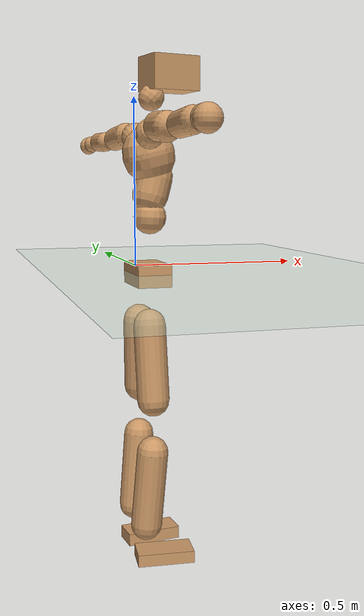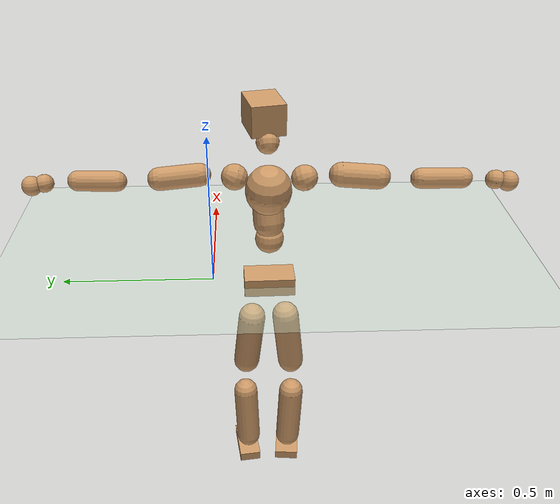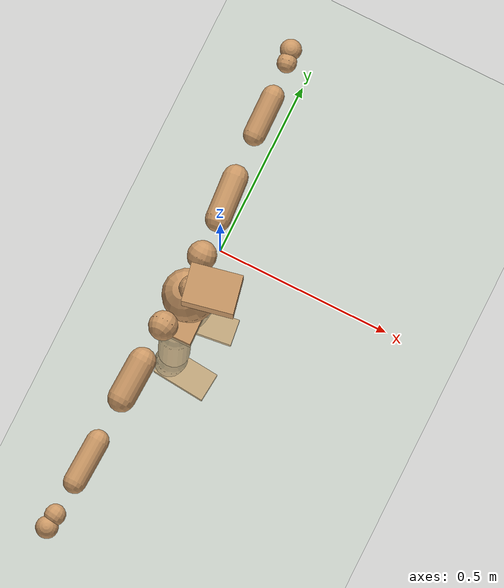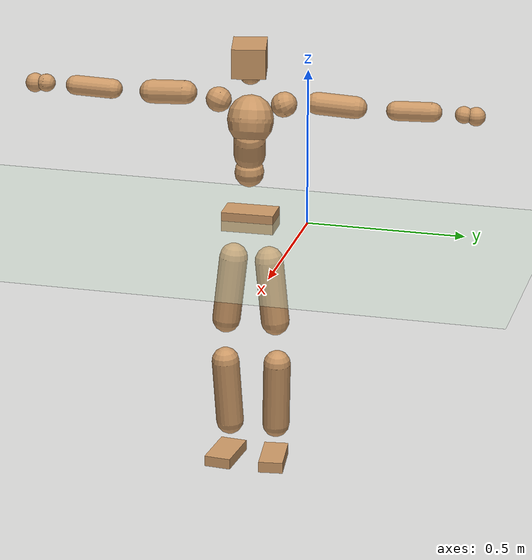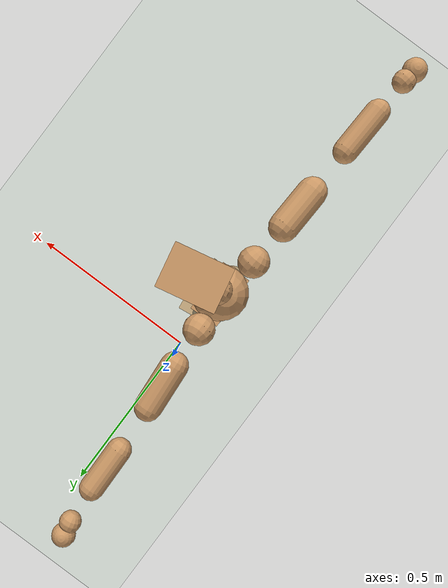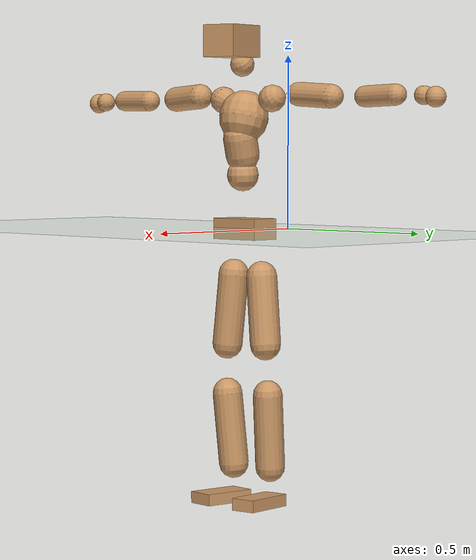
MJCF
<mujoco model="humanoid">
  <compiler coordinate="local" angle="radian"/>
  <default>
    <joint damping="0.0" armature="0.01" stiffness="0.0" limited="true"/>
    <geom conaffinity="1" condim="3" contype="7" margin="0.001" rgba="0.8 0.6 .4 1"/>
  </default>
  <asset>
    <texture type="skybox" builtin="gradient" rgb1=".4 .5 .6" rgb2="0 0 0" width="100" height="100"/>
    <texture builtin="flat" height="1278" mark="cross" markrgb="1 1 1" name="texgeom" random="0.01" rgb1="0.8 0.6 0.4" rgb2="0.8 0.6 0.4" type="cube" width="127"/>
    <texture builtin="checker" height="100" name="texplane" rgb1="0 0 0" rgb2="0.8 0.8 0.8" type="2d" width="100"/>
    <material name="MatPlane" reflectance="0.5" shininess="1" specular="1" texrepeat="60 60" texture="texplane"/>
    <material name="geom" texture="texgeom" texuniform="true"/>
  </asset>
  <worldbody>
    <light cutoff="100" diffuse="1 1 1" dir="-0 0 -1.3" directional="true" exponent="1" pos="0 0 1.3" specular=".1 .1 .1"/>
    <geom conaffinity="1" condim="3" name="floor" pos="0 0 0" rgba="0.8 0.9 0.8 1" size="100 100 .2" type="plane" material="MatPlane"/>
    <body name="Pelvis" pos="-0.0011 -0.1858 0.0056">
      <freejoint name="Pelvis"/>
      <geom type="box" contype="1" conaffinity="1" density="5359.375381" pos="-0.0064 -0.0001 -0.0106" size="0.0473 0.0833 0.0309" quat="0.9999 0.0000 0.0000 0.0113" name="Pelvis"/>
      <body name="L_Hip" pos="-0.0202 0.0505 -0.0759">
        <joint name="L_Hip_x" type="hinge" pos="0 0 0" axis="1 0 0" stiffness="1600" damping="160" armature="0.02" range="-180.0000 180.0000"/>
        <joint name="L_Hip_y" type="hinge" pos="0 0 0" axis="0 1 0" stiffness="1600" damping="160" armature="0.02" range="-180.0000 180.0000"/>
        <joint name="L_Hip_z" type="hinge" pos="0 0 0" axis="0 0 1" stiffness="1600" damping="160" armature="0.02" range="-180.0000 180.0000"/>
        <geom type="capsule" contype="1" conaffinity="1" density="2040.816327" size="0.0455" fromto="0.0021 0.0080 -0.0750 0.0077 0.0294 -0.2757" name="L_Hip"/>
        <body name="L_Knee" pos="0.0098 0.0374 -0.3508">
          <joint name="L_Knee_x" type="hinge" pos="0 0 0" axis="1 0 0" stiffness="1600" damping="160" armature="0.02" range="-180.0000 180.0000"/>
          <joint name="L_Knee_y" type="hinge" pos="0 0 0" axis="0 1 0" stiffness="1600" damping="160" armature="0.02" range="-180.0000 180.0000"/>
          <joint name="L_Knee_z" type="hinge" pos="0 0 0" axis="0 0 1" stiffness="1600" damping="160" armature="0.02" range="-180.0000 180.0000"/>
          <geom type="capsule" contype="1" conaffinity="1" density="1234.567901" size="0.0434" fromto="-0.0062 -0.0026 -0.0731 -0.0246 -0.0105 -0.2904" name="L_Knee"/>
          <body name="L_Ankle" pos="-0.0308 -0.0131 -0.3635">
            <joint name="L_Ankle_x" type="hinge" pos="0 0 0" axis="1 0 0" stiffness="1600" damping="160" armature="0.02" range="-180.0000 180.0000"/>
            <joint name="L_Ankle_y" type="hinge" pos="0 0 0" axis="0 1 0" stiffness="1600" damping="160" armature="0.02" range="-180.0000 180.0000"/>
            <joint name="L_Ankle_z" type="hinge" pos="0 0 0" axis="0 0 1" stiffness="1600" damping="160" armature="0.02" range="-180.0000 180.0000"/>
            <geom type="box" contype="1" conaffinity="1" density="1000.000032" pos="0.0560 0.0068 -0.0254" size="0.0795 0.0388 0.0179" quat="0.9982 0.0000 0.0000 0.0607" name="L_Ankle"/>
            <body name="L_Toe" pos="0.1121 0.0137 -0.0508">
              <joint name="L_Toe_x" type="hinge" pos="0 0 0" axis="1 0 0" stiffness="1000" damping="100" armature="0.02" range="-180.0000 180.0000"/>
              <joint name="L_Toe_y" type="hinge" pos="0 0 0" axis="0 1 0" stiffness="1000" damping="100" armature="0.02" range="-180.0000 180.0000"/>
              <joint name="L_Toe_z" type="hinge" pos="0 0 0" axis="0 0 1" stiffness="1000" damping="100" armature="0.02" range="-180.0000 180.0000"/>
              <geom type="box" contype="1" conaffinity="1" density="9138841.696193" pos="0.0000 0.0000 0.0269" size="0.0008 0.002 0.001" quat="0.9977 0.0000 0.0000 0.0683" name="L_Toe"/>
            </body>
          </body>
        </body>
      </body>
      <body name="R_Hip" pos="-0.0165 -0.0487 -0.0732">
        <joint name="R_Hip_x" type="hinge" pos="0 0 0" axis="1 0 0" stiffness="1600" damping="160" armature="0.02" range="-180.0000 180.0000"/>
        <joint name="R_Hip_y" type="hinge" pos="0 0 0" axis="0 1 0" stiffness="1600" damping="160" armature="0.02" range="-180.0000 180.0000"/>
        <joint name="R_Hip_z" type="hinge" pos="0 0 0" axis="0 0 1" stiffness="1600" damping="160" armature="0.02" range="-180.0000 180.0000"/>
        <geom type="capsule" contype="1" conaffinity="1" density="2040.816327" size="0.045" fromto="0.0013 -0.0082 -0.0745 0.0051 -0.0312 -0.2846" name="R_Hip"/>
        <body name="R_Knee" pos="0.0064 -0.0394 -0.3592">
          <joint name="R_Knee_x" type="hinge" pos="0 0 0" axis="1 0 0" stiffness="1600" damping="160" armature="0.02" range="-180.0000 180.0000"/>
          <joint name="R_Knee_y" type="hinge" pos="0 0 0" axis="0 1 0" stiffness="1600" damping="160" armature="0.02" range="-180.0000 180.0000"/>
          <joint name="R_Knee_z" type="hinge" pos="0 0 0" axis="0 0 1" stiffness="1600" damping="160" armature="0.02" range="-180.0000 180.0000"/>
          <geom type="capsule" contype="1" conaffinity="1" density="1234.567901" size="0.0442" fromto="-0.0059 0.0034 -0.0738 -0.0229 0.0132 -0.2885" name="R_Knee"/>
          <body name="R_Ankle" pos="-0.0288 0.0166 -0.3623">
            <joint name="R_Ankle_x" type="hinge" pos="0 0 0" axis="1 0 0" stiffness="1600" damping="160" armature="0.02" range="-180.0000 180.0000"/>
            <joint name="R_Ankle_y" type="hinge" pos="0 0 0" axis="0 1 0" stiffness="1600" damping="160" armature="0.02" range="-180.0000 180.0000"/>
            <joint name="R_Ankle_z" type="hinge" pos="0 0 0" axis="0 0 1" stiffness="1600" damping="160" armature="0.02" range="-180.0000 180.0000"/>
            <geom type="box" contype="1" conaffinity="1" density="1000.000053" pos="0.0571 -0.0051 -0.0204" size="0.0805 0.0428 0.0172" quat="0.9990 0.0000 0.0000 -0.0447" name="R_Ankle"/>
            <body name="R_Toe" pos="0.1143 -0.0103 -0.0408">
              <joint name="R_Toe_x" type="hinge" pos="0 0 0" axis="1 0 0" stiffness="1000" damping="100" armature="0.02" range="-180.0000 180.0000"/>
              <joint name="R_Toe_y" type="hinge" pos="0 0 0" axis="0 1 0" stiffness="1000" damping="100" armature="0.02" range="-180.0000 180.0000"/>
              <joint name="R_Toe_z" type="hinge" pos="0 0 0" axis="0 0 1" stiffness="1000" damping="100" armature="0.02" range="-180.0000 180.0000"/>
              <geom type="box" contype="1" conaffinity="1" density="8906024.242625" pos="0.0000 0.0000 0.0228" size="0.0008 0.0021 0.001" quat="0.9994 0.0000 0.0000 -0.0354" name="R_Toe"/>
            </body>
          </body>
        </body>
      </body>
      <body name="Torso" pos="-0.0018 -0.0027 0.0854">
        <joint name="Torso_x" type="hinge" pos="0 0 0" axis="1 0 0" stiffness="2000" damping="200" armature="0.02" range="-180.0000 180.0000"/>
        <joint name="Torso_y" type="hinge" pos="0 0 0" axis="0 1 0" stiffness="2000" damping="200" armature="0.02" range="-180.0000 180.0000"/>
        <joint name="Torso_z" type="hinge" pos="0 0 0" axis="0 0 1" stiffness="2000" damping="200" armature="0.02" range="-180.0000 180.0000"/>
        <geom type="capsule" contype="1" conaffinity="1" density="2040.816327" size="0.0465" fromto="0.0031 0.0018 0.0615 0.0032 0.0018 0.0635" name="Torso"/>
        <body name="Spine" pos="0.0063 0.0036 0.1249">
          <joint name="Spine_x" type="hinge" pos="0 0 0" axis="1 0 0" stiffness="2000" damping="200" armature="0.02" range="-180.0000 180.0000"/>
          <joint name="Spine_y" type="hinge" pos="0 0 0" axis="0 1 0" stiffness="2000" damping="200" armature="0.02" range="-180.0000 180.0000"/>
          <joint name="Spine_z" type="hinge" pos="0 0 0" axis="0 0 1" stiffness="2000" damping="200" armature="0.02" range="-180.0000 180.0000"/>
          <geom type="capsule" contype="1" conaffinity="1" density="2040.816327" size="0.05" fromto="0.0134 0.0031 0.0481 -0.0009 -0.0002 -0.0031" name="Spine"/>
          <body name="Chest" pos="0.0126 0.0029 0.0449">
            <joint name="Chest_x" type="hinge" pos="0 0 0" axis="1 0 0" stiffness="2000" damping="200" armature="0.02" range="-180.0000 180.0000"/>
            <joint name="Chest_y" type="hinge" pos="0 0 0" axis="0 1 0" stiffness="2000" damping="200" armature="0.02" range="-180.0000 180.0000"/>
            <joint name="Chest_z" type="hinge" pos="0 0 0" axis="0 0 1" stiffness="2000" damping="200" armature="0.02" range="-180.0000 180.0000"/>
            <geom type="capsule" contype="1" conaffinity="1" density="2040.816327" size="0.0726" fromto="-0.0180 -0.0010 0.0704 -0.0150 -0.0008 0.0586" name="Chest"/>
            <body name="Neck" pos="-0.0334 -0.0025 0.1856">
              <joint name="Neck_x" type="hinge" pos="0 0 0" axis="1 0 0" stiffness="1000" damping="100" armature="0.02" range="-180.0000 180.0000"/>
              <joint name="Neck_y" type="hinge" pos="0 0 0" axis="0 1 0" stiffness="1000" damping="100" armature="0.02" range="-180.0000 180.0000"/>
              <joint name="Neck_z" type="hinge" pos="0 0 0" axis="0 0 1" stiffness="1000" damping="100" armature="0.02" range="-180.0000 180.0000"/>
              <geom type="capsule" contype="1" conaffinity="1" density="1000" size="0.0353" fromto="0.0256 0.0045 0.0320 0.0269 0.0047 0.0335" name="Neck"/>
              <body name="Head" pos="0.0525 0.0092 0.0655">
                <joint name="Head_x" type="hinge" pos="0 0 0" axis="1 0 0" stiffness="1000" damping="100" armature="0.02" range="-180.0000 180.0000"/>
                <joint name="Head_y" type="hinge" pos="0 0 0" axis="0 1 0" stiffness="1000" damping="100" armature="0.02" range="-180.0000 180.0000"/>
                <joint name="Head_z" type="hinge" pos="0 0 0" axis="0 0 1" stiffness="1000" damping="100" armature="0.02" range="-180.0000 180.0000"/>
                <geom type="box" contype="1" conaffinity="1" density="2250.000043" pos="0.0272 0.0056 0.0337" size="0.0696 0.0527 0.0469" quat="0.9948 0.0000 0.0000 0.1016" name="Head"/>
              </body>
            </body>
            <body name="L_Thorax" pos="-0.0306 0.0629 0.1024">
              <joint name="L_Thorax_x" type="hinge" pos="0 0 0" axis="1 0 0" stiffness="1000" damping="100" armature="0.02" range="-180.0000 180.0000"/>
              <joint name="L_Thorax_y" type="hinge" pos="0 0 0" axis="0 1 0" stiffness="1000" damping="100" armature="0.02" range="-180.0000 180.0000"/>
              <joint name="L_Thorax_z" type="hinge" pos="0 0 0" axis="0 0 1" stiffness="1000" damping="100" armature="0.02" range="-180.0000 180.0000"/>
              <geom type="capsule" contype="1" conaffinity="1" density="1000" size="0.0399" fromto="0.0005 0.0389 0.0149 0.0005 0.0407 0.0157" name="L_Thorax"/>
              <body name="L_Shoulder" pos="0.001 0.0796 0.0306">
                <joint name="L_Shoulder_x" type="hinge" pos="0 0 0" axis="1 0 0" stiffness="1000" damping="100" armature="0.02" range="-720.0000 720.0000"/>
                <joint name="L_Shoulder_y" type="hinge" pos="0 0 0" axis="0 1 0" stiffness="1000" damping="100" armature="0.02" range="-720.0000 720.0000"/>
                <joint name="L_Shoulder_z" type="hinge" pos="0 0 0" axis="0 0 1" stiffness="1000" damping="100" armature="0.02" range="-720.0000 720.0000"/>
                <geom type="capsule" contype="1" conaffinity="1" density="1000" size="0.035" fromto="-0.0050 0.0646 -0.0040 -0.0143 0.1847 -0.0116" name="L_Shoulder"/>
                <body name="L_Elbow" pos="-0.0193 0.2494 -0.0156">
                  <joint name="L_Elbow_x" type="hinge" pos="0 0 0" axis="1 0 0" stiffness="1000" damping="100" armature="0.02" range="-720.0000 720.0000"/>
                  <joint name="L_Elbow_y" type="hinge" pos="0 0 0" axis="0 1 0" stiffness="1000" damping="100" armature="0.02" range="-720.0000 720.0000"/>
                  <joint name="L_Elbow_z" type="hinge" pos="0 0 0" axis="0 0 1" stiffness="1000" damping="100" armature="0.02" range="-720.0000 720.0000"/>
                  <geom type="capsule" contype="1" conaffinity="1" density="1000" size="0.0306" fromto="-0.0010 0.0605 0.0020 -0.0029 0.1736 0.0057" name="L_Elbow"/>
                  <body name="L_Wrist" pos="-0.0039 0.2341 0.0076">
                    <joint name="L_Wrist_x" type="hinge" pos="0 0 0" axis="1 0 0" stiffness="600" damping="60" armature="0.02" range="-180.0000 180.0000"/>
                    <joint name="L_Wrist_y" type="hinge" pos="0 0 0" axis="0 1 0" stiffness="600" damping="60" armature="0.02" range="-180.0000 180.0000"/>
                    <joint name="L_Wrist_z" type="hinge" pos="0 0 0" axis="0 0 1" stiffness="600" damping="60" armature="0.02" range="-180.0000 180.0000"/>
                    <geom type="capsule" contype="1" conaffinity="1" density="1000" size="0.0269" fromto="-0.0061 0.0358 -0.0044 -0.0064 0.0377 -0.0047" name="L_Wrist"/>
                    <body name="L_Hand" pos="-0.0126 0.0735 -0.0091">
                      <joint name="L_Hand_x" type="hinge" pos="0 0 0" axis="1 0 0" stiffness="600" damping="60" armature="0.02" range="-180.0000 180.0000"/>
                      <joint name="L_Hand_y" type="hinge" pos="0 0 0" axis="0 1 0" stiffness="600" damping="60" armature="0.02" range="-180.0000 180.0000"/>
                      <joint name="L_Hand_z" type="hinge" pos="0 0 0" axis="0 0 1" stiffness="600" damping="60" armature="0.02" range="-180.0000 180.0000"/>
                      <geom type="sphere" contype="1" conaffinity="1" density="1000" size="0.0294" pos="0.0000 0.0000 0.0000" name="L_Hand"/>
                    </body>
                  </body>
                </body>
              </body>
            </body>
            <body name="R_Thorax" pos="-0.0349 -0.066 0.099">
              <joint name="R_Thorax_x" type="hinge" pos="0 0 0" axis="1 0 0" stiffness="1000" damping="100" armature="0.02" range="-180.0000 180.0000"/>
              <joint name="R_Thorax_y" type="hinge" pos="0 0 0" axis="0 1 0" stiffness="1000" damping="100" armature="0.02" range="-180.0000 180.0000"/>
              <joint name="R_Thorax_z" type="hinge" pos="0 0 0" axis="0 0 1" stiffness="1000" damping="100" armature="0.02" range="-180.0000 180.0000"/>
              <geom type="capsule" contype="1" conaffinity="1" density="1000" size="0.0396" fromto="-0.0035 -0.0415 0.0160 -0.0036 -0.0434 0.0167" name="R_Thorax"/>
              <body name="R_Shoulder" pos="-0.0071 -0.085 0.0326">
                <joint name="R_Shoulder_x" type="hinge" pos="0 0 0" axis="1 0 0" stiffness="1000" damping="100" armature="0.02" range="-720.0000 720.0000"/>
                <joint name="R_Shoulder_y" type="hinge" pos="0 0 0" axis="0 1 0" stiffness="1000" damping="100" armature="0.02" range="-720.0000 720.0000"/>
                <joint name="R_Shoulder_z" type="hinge" pos="0 0 0" axis="0 0 1" stiffness="1000" damping="100" armature="0.02" range="-720.0000 720.0000"/>
                <geom type="capsule" contype="1" conaffinity="1" density="1000" size="0.0376" fromto="-0.0029 -0.0674 -0.0043 -0.0078 -0.1780 -0.0114" name="R_Shoulder"/>
                <body name="R_Elbow" pos="-0.0107 -0.2454 -0.0157">
                  <joint name="R_Elbow_x" type="hinge" pos="0 0 0" axis="1 0 0" stiffness="1000" damping="100" armature="0.02" range="-720.0000 720.0000"/>
                  <joint name="R_Elbow_y" type="hinge" pos="0 0 0" axis="0 1 0" stiffness="1000" damping="100" armature="0.02" range="-720.0000 720.0000"/>
                  <joint name="R_Elbow_z" type="hinge" pos="0 0 0" axis="0 0 1" stiffness="1000" damping="100" armature="0.02" range="-720.0000 720.0000"/>
                  <geom type="capsule" contype="1" conaffinity="1" density="1000" size="0.0311" fromto="-0.0026 -0.0610 0.0006 -0.0078 -0.1840 0.0019" name="R_Elbow"/>
                  <body name="R_Wrist" pos="-0.0104 -0.245 0.0026">
                    <joint name="R_Wrist_x" type="hinge" pos="0 0 0" axis="1 0 0" stiffness="600" damping="60" armature="0.02" range="-180.0000 180.0000"/>
                    <joint name="R_Wrist_y" type="hinge" pos="0 0 0" axis="0 1 0" stiffness="600" damping="60" armature="0.02" range="-180.0000 180.0000"/>
                    <joint name="R_Wrist_z" type="hinge" pos="0 0 0" axis="0 0 1" stiffness="600" damping="60" armature="0.02" range="-180.0000 180.0000"/>
                    <geom type="capsule" contype="1" conaffinity="1" density="1000" size="0.0285" fromto="-0.0047 -0.0374 -0.0035 -0.0050 -0.0394 -0.0036" name="R_Wrist"/>
                    <body name="R_Hand" pos="-0.0097 -0.0768 -0.0071">
                      <joint name="R_Hand_x" type="hinge" pos="0 0 0" axis="1 0 0" stiffness="600" damping="60" armature="0.02" range="-180.0000 180.0000"/>
                      <joint name="R_Hand_y" type="hinge" pos="0 0 0" axis="0 1 0" stiffness="600" damping="60" armature="0.02" range="-180.0000 180.0000"/>
                      <joint name="R_Hand_z" type="hinge" pos="0 0 0" axis="0 0 1" stiffness="600" damping="60" armature="0.02" range="-180.0000 180.0000"/>
                      <geom type="sphere" contype="1" conaffinity="1" density="1000" size="0.0305" pos="0.0000 0.0000 0.0000" name="R_Hand"/>
                    </body>
                  </body>
                </body>
              </body>
            </body>
          </body>
        </body>
      </body>
    </body>
  </worldbody>
  <actuator>
    <motor name="L_Hip_x" joint="L_Hip_x" gear="500"/>
    <motor name="L_Hip_y" joint="L_Hip_y" gear="500"/>
    <motor name="L_Hip_z" joint="L_Hip_z" gear="500"/>
    <motor name="L_Knee_x" joint="L_Knee_x" gear="500"/>
    <motor name="L_Knee_y" joint="L_Knee_y" gear="500"/>
    <motor name="L_Knee_z" joint="L_Knee_z" gear="500"/>
    <motor name="L_Ankle_x" joint="L_Ankle_x" gear="500"/>
    <motor name="L_Ankle_y" joint="L_Ankle_y" gear="500"/>
    <motor name="L_Ankle_z" joint="L_Ankle_z" gear="500"/>
    <motor name="L_Toe_x" joint="L_Toe_x" gear="500"/>
    <motor name="L_Toe_y" joint="L_Toe_y" gear="500"/>
    <motor name="L_Toe_z" joint="L_Toe_z" gear="500"/>
    <motor name="R_Hip_x" joint="R_Hip_x" gear="500"/>
    <motor name="R_Hip_y" joint="R_Hip_y" gear="500"/>
    <motor name="R_Hip_z" joint="R_Hip_z" gear="500"/>
    <motor name="R_Knee_x" joint="R_Knee_x" gear="500"/>
    <motor name="R_Knee_y" joint="R_Knee_y" gear="500"/>
    <motor name="R_Knee_z" joint="R_Knee_z" gear="500"/>
    <motor name="R_Ankle_x" joint="R_Ankle_x" gear="500"/>
    <motor name="R_Ankle_y" joint="R_Ankle_y" gear="500"/>
    <motor name="R_Ankle_z" joint="R_Ankle_z" gear="500"/>
    <motor name="R_Toe_x" joint="R_Toe_x" gear="500"/>
    <motor name="R_Toe_y" joint="R_Toe_y" gear="500"/>
    <motor name="R_Toe_z" joint="R_Toe_z" gear="500"/>
    <motor name="Torso_x" joint="Torso_x" gear="500"/>
    <motor name="Torso_y" joint="Torso_y" gear="500"/>
    <motor name="Torso_z" joint="Torso_z" gear="500"/>
    <motor name="Spine_x" joint="Spine_x" gear="500"/>
    <motor name="Spine_y" joint="Spine_y" gear="500"/>
    <motor name="Spine_z" joint="Spine_z" gear="500"/>
    <motor name="Chest_x" joint="Chest_x" gear="500"/>
    <motor name="Chest_y" joint="Chest_y" gear="500"/>
    <motor name="Chest_z" joint="Chest_z" gear="500"/>
    <motor name="Neck_x" joint="Neck_x" gear="500"/>
    <motor name="Neck_y" joint="Neck_y" gear="500"/>
    <motor name="Neck_z" joint="Neck_z" gear="500"/>
    <motor name="Head_x" joint="Head_x" gear="500"/>
    <motor name="Head_y" joint="Head_y" gear="500"/>
    <motor name="Head_z" joint="Head_z" gear="500"/>
    <motor name="L_Thorax_x" joint="L_Thorax_x" gear="500"/>
    <motor name="L_Thorax_y" joint="L_Thorax_y" gear="500"/>
    <motor name="L_Thorax_z" joint="L_Thorax_z" gear="500"/>
    <motor name="L_Shoulder_x" joint="L_Shoulder_x" gear="500"/>
    <motor name="L_Shoulder_y" joint="L_Shoulder_y" gear="500"/>
    <motor name="L_Shoulder_z" joint="L_Shoulder_z" gear="500"/>
    <motor name="L_Elbow_x" joint="L_Elbow_x" gear="500"/>
    <motor name="L_Elbow_y" joint="L_Elbow_y" gear="500"/>
    <motor name="L_Elbow_z" joint="L_Elbow_z" gear="500"/>
    <motor name="L_Wrist_x" joint="L_Wrist_x" gear="500"/>
    <motor name="L_Wrist_y" joint="L_Wrist_y" gear="500"/>
    <motor name="L_Wrist_z" joint="L_Wrist_z" gear="500"/>
    <motor name="L_Hand_x" joint="L_Hand_x" gear="500"/>
    <motor name="L_Hand_y" joint="L_Hand_y" gear="500"/>
    <motor name="L_Hand_z" joint="L_Hand_z" gear="500"/>
    <motor name="R_Thorax_x" joint="R_Thorax_x" gear="500"/>
    <motor name="R_Thorax_y" joint="R_Thorax_y" gear="500"/>
    <motor name="R_Thorax_z" joint="R_Thorax_z" gear="500"/>
    <motor name="R_Shoulder_x" joint="R_Shoulder_x" gear="500"/>
    <motor name="R_Shoulder_y" joint="R_Shoulder_y" gear="500"/>
    <motor name="R_Shoulder_z" joint="R_Shoulder_z" gear="500"/>
    <motor name="R_Elbow_x" joint="R_Elbow_x" gear="500"/>
    <motor name="R_Elbow_y" joint="R_Elbow_y" gear="500"/>
    <motor name="R_Elbow_z" joint="R_Elbow_z" gear="500"/>
    <motor name="R_Wrist_x" joint="R_Wrist_x" gear="500"/>
    <motor name="R_Wrist_y" joint="R_Wrist_y" gear="500"/>
    <motor name="R_Wrist_z" joint="R_Wrist_z" gear="500"/>
    <motor name="R_Hand_x" joint="R_Hand_x" gear="500"/>
    <motor name="R_Hand_y" joint="R_Hand_y" gear="500"/>
    <motor name="R_Hand_z" joint="R_Hand_z" gear="500"/>
  </actuator>
  <contact>
    <exclude body1="Torso" body2="Chest"/>
    <exclude body1="Head" body2="Chest"/>
    <exclude body1="R_Knee" body2="R_Toe"/>
    <exclude body1="R_Knee" body2="L_Ankle"/>
    <exclude body1="R_Knee" body2="L_Toe"/>
    <exclude body1="L_Knee" body2="L_Toe"/>
    <exclude body1="L_Knee" body2="R_Ankle"/>
    <exclude body1="L_Knee" body2="R_Toe"/>
    <exclude body1="L_Shoulder" body2="Chest"/>
    <exclude body1="R_Shoulder" body2="Chest"/>
  </contact>
  <sensor/>
  <size njmax="700" nconmax="700"/>
</mujoco>
